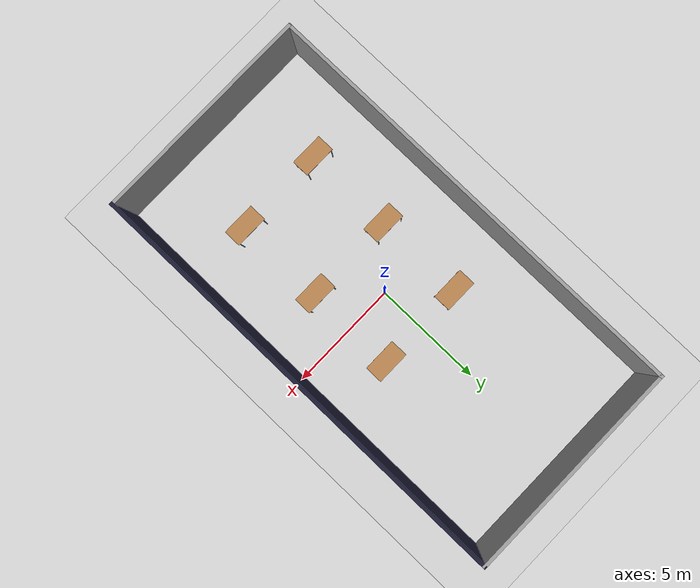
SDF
<sdf version="1.7">
 <world name="default">
  <light name="sun" type="directional">
   <pose>0 0 10 0 -0 0</pose>
   <diffuse>0.8 0.8 0.8 1</diffuse>
   <specular>0.2 0.2 0.2 1</specular>
   <attenuation>
    <range>1000</range>
    <constant>0.9</constant>
    <linear>0.01</linear>
    <quadratic>0.001</quadratic>
   </attenuation>
   <direction>-0.5 0.1 -0.9</direction>
   <spot><inner_angle>0</inner_angle><outer_angle>0</outer_angle><falloff>0</falloff></spot>
  </light>
  <model name="ground_plane">
   <static>1</static>
   <link name="link">
    <collision name="collision">
     <geometry><plane><normal>0 0 1</normal><size>100 100</size></plane></geometry>
     <surface>
      <contact><collide_bitmask>65535</collide_bitmask></contact>
      <friction><ode><mu>100</mu><mu2>50</mu2></ode></friction>
     </surface>
    </collision>
    <visual name="visual">
     <cast_shadows>0</cast_shadows>
     <geometry><plane><normal>0 0 1</normal><size>100 100</size></plane></geometry>
     <material>
      <script><uri>file://media/materials/scripts/gazebo.material</uri><name>Gazebo/Grey</name></script>
     </material>
    </visual>
   </link>
  </model>
  <gravity>0 0 -9.8</gravity>
  <magnetic_field>6e-06 2.3e-05 -4.2e-05</magnetic_field>
  <atmosphere type="adiabatic"/>
  <physics type="ode">
   <max_step_size>0.001</max_step_size>
   <real_time_factor>1</real_time_factor>
   <real_time_update_rate>1000</real_time_update_rate>
  </physics>
  <scene><ambient>0.4 0.4 0.4 1</ambient><background>0.7 0.7 0.7 1</background><shadows>1</shadows></scene>
  <spherical_coordinates>
   <surface_model>EARTH_WGS84</surface_model>
   <latitude_deg>0</latitude_deg>
   <longitude_deg>0</longitude_deg>
   <elevation>0</elevation>
   <heading_deg>0</heading_deg>
  </spherical_coordinates>
  <model name="table6">
   <static>1</static>
   <link name="link">
    <collision name="surface">
     <pose>0 0 1 0 -0 0</pose>
     <geometry><box><size>1.5 0.8 0.03</size></box></geometry>
     <surface><friction><ode><mu>0.6</mu><mu2>0.6</mu2></ode></friction></surface>
    </collision>
    <visual name="visual1">
     <pose>0 0 1 0 -0 0</pose>
     <geometry><box><size>1.5 0.8 0.03</size></box></geometry>
     <material>
      <diffuse>1 1 1 1</diffuse>
      <script><uri>file://media/materials/scripts/gazebo.material</uri><name>Gazebo/Wood</name></script>
      <pbr><metal><albedo_map>model://Table/Table_Diffuse.jpg</albedo_map></metal></pbr>
     </material>
    </visual>
    <collision name="front_left_leg">
     <pose>0.68 0.38 0.5 0 -0 0</pose>
     <geometry><cylinder><radius>0.02</radius><length>1</length></cylinder></geometry>
    </collision>
    <visual name="front_left_leg">
     <pose>0.68 0.38 0.5 0 -0 0</pose>
     <geometry><cylinder><radius>0.02</radius><length>1</length></cylinder></geometry>
     <material>
      <diffuse>0.5 0.5 0.5 1</diffuse>
      <script><uri>file://media/materials/scripts/gazebo.material</uri><name>Gazebo/Grey</name></script>
     </material>
    </visual>
    <collision name="front_right_leg">
     <pose>0.68 -0.38 0.5 0 -0 0</pose>
     <geometry><cylinder><radius>0.02</radius><length>1</length></cylinder></geometry>
    </collision>
    <visual name="front_right_leg">
     <pose>0.68 -0.38 0.5 0 -0 0</pose>
     <geometry><cylinder><radius>0.02</radius><length>1</length></cylinder></geometry>
     <material>
      <diffuse>0.5 0.5 0.5 1</diffuse>
      <script><uri>file://media/materials/scripts/gazebo.material</uri><name>Gazebo/Grey</name></script>
     </material>
    </visual>
    <collision name="back_right_leg">
     <pose>-0.68 -0.38 0.5 0 -0 0</pose>
     <geometry><cylinder><radius>0.02</radius><length>1</length></cylinder></geometry>
    </collision>
    <visual name="back_right_leg">
     <pose>-0.68 -0.38 0.5 0 -0 0</pose>
     <geometry><cylinder><radius>0.02</radius><length>1</length></cylinder></geometry>
     <material>
      <diffuse>0.5 0.5 0.5 1</diffuse>
      <script><uri>file://media/materials/scripts/gazebo.material</uri><name>Gazebo/Grey</name></script>
     </material>
    </visual>
    <collision name="back_left_leg">
     <pose>-0.68 0.38 0.5 0 -0 0</pose>
     <geometry><cylinder><radius>0.02</radius><length>1</length></cylinder></geometry>
    </collision>
    <visual name="back_left_leg">
     <pose>-0.68 0.38 0.5 0 -0 0</pose>
     <geometry><cylinder><radius>0.02</radius><length>1</length></cylinder></geometry>
     <material>
      <diffuse>0.5 0.5 0.5 1</diffuse>
      <script><uri>file://media/materials/scripts/gazebo.material</uri><name>Gazebo/Grey</name></script>
     </material>
    </visual>
   </link>
   <pose>2 2 0 0 -0 0</pose>
  </model>
  <model name="table7">
   <static>1</static>
   <link name="link">
    <collision name="surface">
     <pose>0 0 1 0 -0 0</pose>
     <geometry><box><size>1.5 0.8 0.03</size></box></geometry>
     <surface><friction><ode><mu>0.6</mu><mu2>0.6</mu2></ode></friction></surface>
    </collision>
    <visual name="visual1">
     <pose>0 0 1 0 -0 0</pose>
     <geometry><box><size>1.5 0.8 0.03</size></box></geometry>
     <material>
      <diffuse>1 1 1 1</diffuse>
      <script><uri>file://media/materials/scripts/gazebo.material</uri><name>Gazebo/Wood</name></script>
      <pbr><metal><albedo_map>model://Table/Table_Diffuse.jpg</albedo_map></metal></pbr>
     </material>
    </visual>
    <collision name="front_left_leg">
     <pose>0.68 0.38 0.5 0 -0 0</pose>
     <geometry><cylinder><radius>0.02</radius><length>1</length></cylinder></geometry>
    </collision>
    <visual name="front_left_leg">
     <pose>0.68 0.38 0.5 0 -0 0</pose>
     <geometry><cylinder><radius>0.02</radius><length>1</length></cylinder></geometry>
     <material>
      <diffuse>0.5 0.5 0.5 1</diffuse>
      <script><uri>file://media/materials/scripts/gazebo.material</uri><name>Gazebo/Grey</name></script>
     </material>
    </visual>
    <collision name="front_right_leg">
     <pose>0.68 -0.38 0.5 0 -0 0</pose>
     <geometry><cylinder><radius>0.02</radius><length>1</length></cylinder></geometry>
    </collision>
    <visual name="front_right_leg">
     <pose>0.68 -0.38 0.5 0 -0 0</pose>
     <geometry><cylinder><radius>0.02</radius><length>1</length></cylinder></geometry>
     <material>
      <diffuse>0.5 0.5 0.5 1</diffuse>
      <script><uri>file://media/materials/scripts/gazebo.material</uri><name>Gazebo/Grey</name></script>
     </material>
    </visual>
    <collision name="back_right_leg">
     <pose>-0.68 -0.38 0.5 0 -0 0</pose>
     <geometry><cylinder><radius>0.02</radius><length>1</length></cylinder></geometry>
    </collision>
    <visual name="back_right_leg">
     <pose>-0.68 -0.38 0.5 0 -0 0</pose>
     <geometry><cylinder><radius>0.02</radius><length>1</length></cylinder></geometry>
     <material>
      <diffuse>0.5 0.5 0.5 1</diffuse>
      <script><uri>file://media/materials/scripts/gazebo.material</uri><name>Gazebo/Grey</name></script>
     </material>
    </visual>
    <collision name="back_left_leg">
     <pose>-0.68 0.38 0.5 0 -0 0</pose>
     <geometry><cylinder><radius>0.02</radius><length>1</length></cylinder></geometry>
    </collision>
    <visual name="back_left_leg">
     <pose>-0.68 0.38 0.5 0 -0 0</pose>
     <geometry><cylinder><radius>0.02</radius><length>1</length></cylinder></geometry>
     <material>
      <diffuse>0.5 0.5 0.5 1</diffuse>
      <script><uri>file://media/materials/scripts/gazebo.material</uri><name>Gazebo/Grey</name></script>
     </material>
    </visual>
   </link>
   <pose>-2 2 0 0 -0 0</pose>
  </model>
  <model name="table8">
   <static>1</static>
   <link name="link">
    <collision name="surface">
     <pose>0 0 1 0 -0 0</pose>
     <geometry><box><size>1.5 0.8 0.03</size></box></geometry>
     <surface><friction><ode><mu>0.6</mu><mu2>0.6</mu2></ode></friction></surface>
    </collision>
    <visual name="visual1">
     <pose>0 0 1 0 -0 0</pose>
     <geometry><box><size>1.5 0.8 0.03</size></box></geometry>
     <material>
      <diffuse>1 1 1 1</diffuse>
      <script><uri>file://media/materials/scripts/gazebo.material</uri><name>Gazebo/Wood</name></script>
      <pbr><metal><albedo_map>model://Table/Table_Diffuse.jpg</albedo_map></metal></pbr>
     </material>
    </visual>
    <collision name="front_left_leg">
     <pose>0.68 0.38 0.5 0 -0 0</pose>
     <geometry><cylinder><radius>0.02</radius><length>1</length></cylinder></geometry>
    </collision>
    <visual name="front_left_leg">
     <pose>0.68 0.38 0.5 0 -0 0</pose>
     <geometry><cylinder><radius>0.02</radius><length>1</length></cylinder></geometry>
     <material>
      <diffuse>0.5 0.5 0.5 1</diffuse>
      <script><uri>file://media/materials/scripts/gazebo.material</uri><name>Gazebo/Grey</name></script>
     </material>
    </visual>
    <collision name="front_right_leg">
     <pose>0.68 -0.38 0.5 0 -0 0</pose>
     <geometry><cylinder><radius>0.02</radius><length>1</length></cylinder></geometry>
    </collision>
    <visual name="front_right_leg">
     <pose>0.68 -0.38 0.5 0 -0 0</pose>
     <geometry><cylinder><radius>0.02</radius><length>1</length></cylinder></geometry>
     <material>
      <diffuse>0.5 0.5 0.5 1</diffuse>
      <script><uri>file://media/materials/scripts/gazebo.material</uri><name>Gazebo/Grey</name></script>
     </material>
    </visual>
    <collision name="back_right_leg">
     <pose>-0.68 -0.38 0.5 0 -0 0</pose>
     <geometry><cylinder><radius>0.02</radius><length>1</length></cylinder></geometry>
    </collision>
    <visual name="back_right_leg">
     <pose>-0.68 -0.38 0.5 0 -0 0</pose>
     <geometry><cylinder><radius>0.02</radius><length>1</length></cylinder></geometry>
     <material>
      <diffuse>0.5 0.5 0.5 1</diffuse>
      <script><uri>file://media/materials/scripts/gazebo.material</uri><name>Gazebo/Grey</name></script>
     </material>
    </visual>
    <collision name="back_left_leg">
     <pose>-0.68 0.38 0.5 0 -0 0</pose>
     <geometry><cylinder><radius>0.02</radius><length>1</length></cylinder></geometry>
    </collision>
    <visual name="back_left_leg">
     <pose>-0.68 0.38 0.5 0 -0 0</pose>
     <geometry><cylinder><radius>0.02</radius><length>1</length></cylinder></geometry>
     <material>
      <diffuse>0.5 0.5 0.5 1</diffuse>
      <script><uri>file://media/materials/scripts/gazebo.material</uri><name>Gazebo/Grey</name></script>
     </material>
    </visual>
   </link>
   <pose>2 -2 0 0 -0 0</pose>
  </model>
  <model name="table9">
   <static>1</static>
   <link name="link">
    <collision name="surface">
     <pose>0 0 1 0 -0 0</pose>
     <geometry><box><size>1.5 0.8 0.03</size></box></geometry>
     <surface><friction><ode><mu>0.6</mu><mu2>0.6</mu2></ode></friction></surface>
    </collision>
    <visual name="visual1">
     <pose>0 0 1 0 -0 0</pose>
     <geometry><box><size>1.5 0.8 0.03</size></box></geometry>
     <material>
      <diffuse>1 1 1 1</diffuse>
      <script><uri>file://media/materials/scripts/gazebo.material</uri><name>Gazebo/Wood</name></script>
      <pbr><metal><albedo_map>model://Table/Table_Diffuse.jpg</albedo_map></metal></pbr>
     </material>
    </visual>
    <collision name="front_left_leg">
     <pose>0.68 0.38 0.5 0 -0 0</pose>
     <geometry><cylinder><radius>0.02</radius><length>1</length></cylinder></geometry>
    </collision>
    <visual name="front_left_leg">
     <pose>0.68 0.38 0.5 0 -0 0</pose>
     <geometry><cylinder><radius>0.02</radius><length>1</length></cylinder></geometry>
     <material>
      <diffuse>0.5 0.5 0.5 1</diffuse>
      <script><uri>file://media/materials/scripts/gazebo.material</uri><name>Gazebo/Grey</name></script>
     </material>
    </visual>
    <collision name="front_right_leg">
     <pose>0.68 -0.38 0.5 0 -0 0</pose>
     <geometry><cylinder><radius>0.02</radius><length>1</length></cylinder></geometry>
    </collision>
    <visual name="front_right_leg">
     <pose>0.68 -0.38 0.5 0 -0 0</pose>
     <geometry><cylinder><radius>0.02</radius><length>1</length></cylinder></geometry>
     <material>
      <diffuse>0.5 0.5 0.5 1</diffuse>
      <script><uri>file://media/materials/scripts/gazebo.material</uri><name>Gazebo/Grey</name></script>
     </material>
    </visual>
    <collision name="back_right_leg">
     <pose>-0.68 -0.38 0.5 0 -0 0</pose>
     <geometry><cylinder><radius>0.02</radius><length>1</length></cylinder></geometry>
    </collision>
    <visual name="back_right_leg">
     <pose>-0.68 -0.38 0.5 0 -0 0</pose>
     <geometry><cylinder><radius>0.02</radius><length>1</length></cylinder></geometry>
     <material>
      <diffuse>0.5 0.5 0.5 1</diffuse>
      <script><uri>file://media/materials/scripts/gazebo.material</uri><name>Gazebo/Grey</name></script>
     </material>
    </visual>
    <collision name="back_left_leg">
     <pose>-0.68 0.38 0.5 0 -0 0</pose>
     <geometry><cylinder><radius>0.02</radius><length>1</length></cylinder></geometry>
    </collision>
    <visual name="back_left_leg">
     <pose>-0.68 0.38 0.5 0 -0 0</pose>
     <geometry><cylinder><radius>0.02</radius><length>1</length></cylinder></geometry>
     <material>
      <diffuse>0.5 0.5 0.5 1</diffuse>
      <script><uri>file://media/materials/scripts/gazebo.material</uri><name>Gazebo/Grey</name></script>
     </material>
    </visual>
   </link>
   <pose>-2 -2 0 0 -0 0</pose>
  </model>
  <model name="table10">
   <static>1</static>
   <link name="link">
    <collision name="surface">
     <pose>0 0 1 0 -0 0</pose>
     <geometry><box><size>1.5 0.8 0.03</size></box></geometry>
     <surface><friction><ode><mu>0.6</mu><mu2>0.6</mu2></ode></friction></surface>
    </collision>
    <visual name="visual1">
     <pose>0 0 1 0 -0 0</pose>
     <geometry><box><size>1.5 0.8 0.03</size></box></geometry>
     <material>
      <diffuse>1 1 1 1</diffuse>
      <script><uri>file://media/materials/scripts/gazebo.material</uri><name>Gazebo/Wood</name></script>
      <pbr><metal><albedo_map>model://Table/Table_Diffuse.jpg</albedo_map></metal></pbr>
     </material>
    </visual>
    <collision name="front_left_leg">
     <pose>0.68 0.38 0.5 0 -0 0</pose>
     <geometry><cylinder><radius>0.02</radius><length>1</length></cylinder></geometry>
    </collision>
    <visual name="front_left_leg">
     <pose>0.68 0.38 0.5 0 -0 0</pose>
     <geometry><cylinder><radius>0.02</radius><length>1</length></cylinder></geometry>
     <material>
      <diffuse>0.5 0.5 0.5 1</diffuse>
      <script><uri>file://media/materials/scripts/gazebo.material</uri><name>Gazebo/Grey</name></script>
     </material>
    </visual>
    <collision name="front_right_leg">
     <pose>0.68 -0.38 0.5 0 -0 0</pose>
     <geometry><cylinder><radius>0.02</radius><length>1</length></cylinder></geometry>
    </collision>
    <visual name="front_right_leg">
     <pose>0.68 -0.38 0.5 0 -0 0</pose>
     <geometry><cylinder><radius>0.02</radius><length>1</length></cylinder></geometry>
     <material>
      <diffuse>0.5 0.5 0.5 1</diffuse>
      <script><uri>file://media/materials/scripts/gazebo.material</uri><name>Gazebo/Grey</name></script>
     </material>
    </visual>
    <collision name="back_right_leg">
     <pose>-0.68 -0.38 0.5 0 -0 0</pose>
     <geometry><cylinder><radius>0.02</radius><length>1</length></cylinder></geometry>
    </collision>
    <visual name="back_right_leg">
     <pose>-0.68 -0.38 0.5 0 -0 0</pose>
     <geometry><cylinder><radius>0.02</radius><length>1</length></cylinder></geometry>
     <material>
      <diffuse>0.5 0.5 0.5 1</diffuse>
      <script><uri>file://media/materials/scripts/gazebo.material</uri><name>Gazebo/Grey</name></script>
     </material>
    </visual>
    <collision name="back_left_leg">
     <pose>-0.68 0.38 0.5 0 -0 0</pose>
     <geometry><cylinder><radius>0.02</radius><length>1</length></cylinder></geometry>
    </collision>
    <visual name="back_left_leg">
     <pose>-0.68 0.38 0.5 0 -0 0</pose>
     <geometry><cylinder><radius>0.02</radius><length>1</length></cylinder></geometry>
     <material>
      <diffuse>0.5 0.5 0.5 1</diffuse>
      <script><uri>file://media/materials/scripts/gazebo.material</uri><name>Gazebo/Grey</name></script>
     </material>
    </visual>
   </link>
   <pose>2 -6 0 0 -0 0</pose>
  </model>
  <model name="table11">
   <static>1</static>
   <link name="link">
    <collision name="surface">
     <pose>0 0 1 0 -0 0</pose>
     <geometry><box><size>1.5 0.8 0.03</size></box></geometry>
     <surface><friction><ode><mu>0.6</mu><mu2>0.6</mu2></ode></friction></surface>
    </collision>
    <visual name="visual1">
     <pose>0 0 1 0 -0 0</pose>
     <geometry><box><size>1.5 0.8 0.03</size></box></geometry>
     <material>
      <diffuse>1 1 1 1</diffuse>
      <script><uri>file://media/materials/scripts/gazebo.material</uri><name>Gazebo/Wood</name></script>
      <pbr><metal><albedo_map>model://Table/Table_Diffuse.jpg</albedo_map></metal></pbr>
     </material>
    </visual>
    <collision name="front_left_leg">
     <pose>0.68 0.38 0.5 0 -0 0</pose>
     <geometry><cylinder><radius>0.02</radius><length>1</length></cylinder></geometry>
    </collision>
    <visual name="front_left_leg">
     <pose>0.68 0.38 0.5 0 -0 0</pose>
     <geometry><cylinder><radius>0.02</radius><length>1</length></cylinder></geometry>
     <material>
      <diffuse>0.5 0.5 0.5 1</diffuse>
      <script><uri>file://media/materials/scripts/gazebo.material</uri><name>Gazebo/Grey</name></script>
     </material>
    </visual>
    <collision name="front_right_leg">
     <pose>0.68 -0.38 0.5 0 -0 0</pose>
     <geometry><cylinder><radius>0.02</radius><length>1</length></cylinder></geometry>
    </collision>
    <visual name="front_right_leg">
     <pose>0.68 -0.38 0.5 0 -0 0</pose>
     <geometry><cylinder><radius>0.02</radius><length>1</length></cylinder></geometry>
     <material>
      <diffuse>0.5 0.5 0.5 1</diffuse>
      <script><uri>file://media/materials/scripts/gazebo.material</uri><name>Gazebo/Grey</name></script>
     </material>
    </visual>
    <collision name="back_right_leg">
     <pose>-0.68 -0.38 0.5 0 -0 0</pose>
     <geometry><cylinder><radius>0.02</radius><length>1</length></cylinder></geometry>
    </collision>
    <visual name="back_right_leg">
     <pose>-0.68 -0.38 0.5 0 -0 0</pose>
     <geometry><cylinder><radius>0.02</radius><length>1</length></cylinder></geometry>
     <material>
      <diffuse>0.5 0.5 0.5 1</diffuse>
      <script><uri>file://media/materials/scripts/gazebo.material</uri><name>Gazebo/Grey</name></script>
     </material>
    </visual>
    <collision name="back_left_leg">
     <pose>-0.68 0.38 0.5 0 -0 0</pose>
     <geometry><cylinder><radius>0.02</radius><length>1</length></cylinder></geometry>
    </collision>
    <visual name="back_left_leg">
     <pose>-0.68 0.38 0.5 0 -0 0</pose>
     <geometry><cylinder><radius>0.02</radius><length>1</length></cylinder></geometry>
     <material>
      <diffuse>0.5 0.5 0.5 1</diffuse>
      <script><uri>file://media/materials/scripts/gazebo.material</uri><name>Gazebo/Grey</name></script>
     </material>
    </visual>
   </link>
   <pose>-2 -6 0 0 -0 0</pose>
  </model>
  <model name="walls">
   <pose>0.012535 0.006121 -0 0 -0 1.56929</pose>
   <link name="Wall_30">
    <collision name="Wall_30_Collision">
     <geometry><box><size>20 0.15 2.5</size></box></geometry>
     <pose>0 0 1.25 0 -0 0</pose>
    </collision>
    <visual name="Wall_30_Visual">
     <pose>0 0 1.25 0 -0 0</pose>
     <geometry><box><size>20 0.15 2.5</size></box></geometry>
     <material>
      <ambient>0.1 0.1 0.1 1</ambient>
      <diffuse>0.1 0.1 0.2 1</diffuse>
      <specular>0 0 0 0</specular>
      <emissive>0 0 0 1</emissive>
     </material>
     <meta><layer>0</layer></meta>
    </visual>
    <pose>0 -4.925 0 0 -0 0</pose>
   </link>
   <link name="Wall_31">
    <collision name="Wall_31_Collision">
     <geometry><box><size>10 0.15 2.5</size></box></geometry>
     <pose>0 0 1.25 0 -0 0</pose>
    </collision>
    <visual name="Wall_31_Visual">
     <pose>0 0 1.25 0 -0 0</pose>
     <geometry><box><size>10 0.15 2.5</size></box></geometry>
     <material>
      <script><uri>file://media/materials/scripts/gazebo.material</uri><name>Gazebo/Grey</name></script>
      <ambient>1 1 1 1</ambient>
     </material>
     <meta><layer>0</layer></meta>
    </visual>
    <pose>9.925 0 0 0 -0 1.5708</pose>
   </link>
   <link name="Wall_32">
    <collision name="Wall_32_Collision">
     <geometry><box><size>20 0.15 2.5</size></box></geometry>
     <pose>0 0 1.25 0 -0 0</pose>
    </collision>
    <visual name="Wall_32_Visual">
     <pose>0 0 1.25 0 -0 0</pose>
     <geometry><box><size>20 0.15 2.5</size></box></geometry>
     <material>
      <script><uri>file://media/materials/scripts/gazebo.material</uri><name>Gazebo/Grey</name></script>
      <ambient>1 1 1 1</ambient>
     </material>
     <meta><layer>0</layer></meta>
    </visual>
    <pose>0 4.925 0 0 -0 3.14159</pose>
   </link>
   <link name="Wall_33">
    <collision name="Wall_33_Collision">
     <geometry><box><size>10 0.15 2.5</size></box></geometry>
     <pose>0 0 1.25 0 -0 0</pose>
    </collision>
    <visual name="Wall_33_Visual">
     <pose>0 0 1.25 0 -0 0</pose>
     <geometry><box><size>10 0.15 2.5</size></box></geometry>
     <material>
      <script><uri>file://media/materials/scripts/gazebo.material</uri><name>Gazebo/Grey</name></script>
      <ambient>1 1 1 1</ambient>
     </material>
     <meta><layer>0</layer></meta>
    </visual>
    <pose>-9.925 0 0 0 -0 -1.5708</pose>
   </link>
   <static>1</static>
  </model>
 </world>
</sdf>
